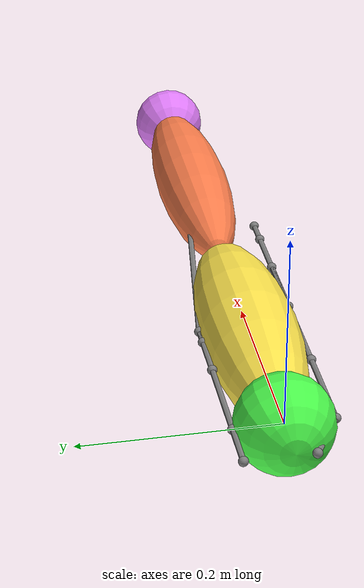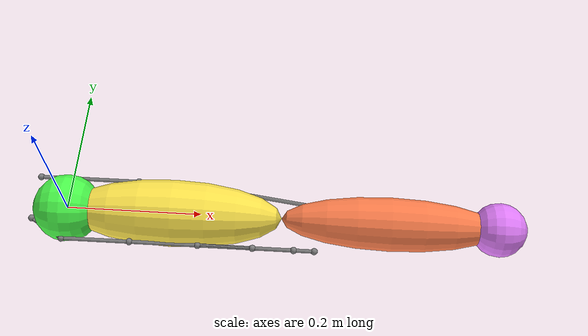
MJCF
<mujoco model="template">
	<compiler angle="radian" autolimits="true"/>
	<option timestep="0.005"/>
	<size njmax="1000" nconmax="400" nkey="1" nuser_jnt="1"/>
	<visual>
		<scale framelength="0.5" framewidth="0.01"/>
		<map znear="0.001" zfar="50"/>
	</visual>

	<asset>
		<texture type="skybox" builtin="gradient" rgb1="1 1 1" rgb2="0.6 0.8 1" width="256" height="1536"/>
		<texture name="grid" type="2d" builtin="checker" width="512" height="512" rgb1=".1 .2 .3" rgb2=".2 .3 .4"/>
		<material name="grid" texture="grid" texrepeat="1 1" texuniform="true" reflectance=".2"/>
	</asset>
	<worldbody>
		<camera name = "top_down" pos="0.3 0 1.0" xyaxes="0 -1 0 1 0 0"/>
		<light directional="true"/>
		<site name="target_site_red" pos="0.552548 0 0.01" size="0.005" rgba="1 0 0 1"/>
		<site name="target_site_blue" pos="0.452548 0 0.01" size="0.005" rgba="0 0 1 1"/>
		<site name="baseProximalOrigin" pos="-.05 0.050000 0" size="0.005"/>
		<site name="baseDistalOrigin" pos="-.05 -0.020000 0" size="0.005"/>
		<body name="ground" euler="1.571 0 0">
			<body name="base" pos="0 0 0">
				<geom type="ellipsoid" size=".05" rgba=".3 1 .3 1" fromto="-.05 0 0 .05 0 0"/>
				<inertial pos="0 0 0" mass=".86" diaginertia="0.025 0.025 0.025"/>
				<joint name="shoulder" pos="0 0 0" axis="0 1 0" range="-1.11 0.610865"/>
				<body name="ProximalForearm" pos="0 0 0">
					<inertial pos="0 0 0" mass="3.25" diaginertia="0.025 0.025 0.025"/>
					<geom type="ellipsoid" size=".05" rgba="1 .9 .3 1" fromto="0 0 0 .32 0 0"/>
					<site name="ProximalForearmProximalInsertion" pos=".1 0 -0.05" size="0.005"/>
					<site name="ProximalForearmDistalInsertion" pos=".1 0 0.05" size="0.005"/>
					<site name="ProximalForearmProximalOrigin"  pos=".15 0 -0.05" size="0.005"/>
					<site name="ProximalForearmDistalOrigin"    pos=".20 0 0.05" size="0.005"/>
					<site name="ProximalForearmProximalAnchor"    pos=".17 0 -0.05" size="0.005"/>
					<site name="ProximalForearmDistalAnchor"      pos=".28 0 0.05" size="0.005"/>
					<site name="ProximalAnchor1"      pos="0 0 -0.05" size="0.005"/>
					<site name="ProximalAnchor2"      pos="0 0 0.05" size="0.005"/>
					<site name="ProximalAnchor3"      pos="0.34 0 0.05" size="0.005"/>
					<body name="DistalForearm" pos=".32 0 0">
						<inertial pos="0 0 0" mass="1.87" diaginertia="0.025 0.025 0.025"/>
						<geom type="ellipsoid" size=".04" rgba="1 .5 .3 1" fromto="0 0 0 .32 0 0"/>
						<site name="DistalForearmProximalInsertion" pos=".07 0 -0.02" size="0.005"/>
						<site name="DistalForearmDistalInsertion" pos=".05 0 0.05" size="0.005"/>
						<joint name="elbow" pos="0 0 0" axis="0 1 0" range="0 2.5"/>
						<body name="Hand" pos=".32 0 0">
							<inertial pos="0 0 0" mass="0.6" diaginertia="0.025 0.025 0.025"/>
							<geom type="ellipsoid" size=".04" rgba=".9 .5 1 1" fromto="-.04 0 0 .04 0 0"/>
							<site name="handsite" pos="0 0 0" rgba="1 0 0 1"/>
						</body>
					</body>
				</body>
			</body>
		</body>
		<body name="Object" pos="0.47 0.0 0.07">
            <site name="object_o" pos="0 0 0" rgba="1 0 0 0"/>
        </body>
	</worldbody>
	<tendon>
		<spatial name="ShoulderFlexor_tendon">
			<site site="baseProximalOrigin"/>
			<site site="ProximalAnchor1"/>
			<site site="ProximalForearmProximalInsertion"/>
		</spatial>
		<spatial name="ShoulderExtensor_tendon">
			<site site="baseDistalOrigin"/>
			<site site="ProximalAnchor2"/>
			<site site="ProximalForearmDistalInsertion"/>
		</spatial>
		<spatial name="ElbowFlexor_tendon">
			<site site="ProximalForearmProximalOrigin"/>
			<site site="ProximalForearmProximalAnchor"/>
			<site site="DistalForearmProximalInsertion"/>
		</spatial>
		<spatial name="ElbowExtensor_tendon">
			<site site="ProximalForearmDistalOrigin"/>
			<site site="ProximalForearmDistalAnchor"/>
			<site site="ProximalAnchor3"/>
			<site site="DistalForearmDistalInsertion"/>
		</spatial>
		<spatial name="BiarticulateProximal_tendon">
			<site site="baseProximalOrigin"/>
			<site site="ProximalAnchor1"/>
			<site site="ProximalForearmProximalInsertion"/>
			<site site="ProximalForearmProximalAnchor"/>
			<site site="DistalForearmProximalInsertion"/>
		</spatial>
		<spatial name="BiarticulateDistal_tendon">
			<site site="baseDistalOrigin"/>
			<site site="ProximalAnchor2"/>
			<site site="ProximalForearmDistalInsertion"/>
			<site site="ProximalForearmDistalAnchor"/>
			<site site="ProximalAnchor3"/>
			<site site="DistalForearmDistalInsertion"/>
		</spatial>
	</tendon>
	<actuator>
		<muscle ctrlrange="0 1" force="100" name="ShoulderFlexor" tendon="ShoulderFlexor_tendon" lengthrange=".01 .2"/>
		<muscle ctrlrange="0 1" force="100" name="ShoulderExtensor" tendon="ShoulderExtensor_tendon" lengthrange=".01 .2"/>
		<muscle ctrlrange="0 1" force="100" name="ElbowFlexor" tendon="ElbowFlexor_tendon" lengthrange=".01 .4"/>
		<muscle ctrlrange="0 1" force="100" name="ElbowExtensor" tendon="ElbowExtensor_tendon" lengthrange=".01 .3"/>
		<muscle ctrlrange="0 1" force="100" name="BiarticulateProximal" tendon="BiarticulateProximal_tendon" lengthrange=".3 .55"/>
		<muscle ctrlrange="0 1" force="100" name="BiarticulateDistal" tendon="BiarticulateDistal_tendon" lengthrange=".3 .6"/>
    </actuator>
</mujoco>
